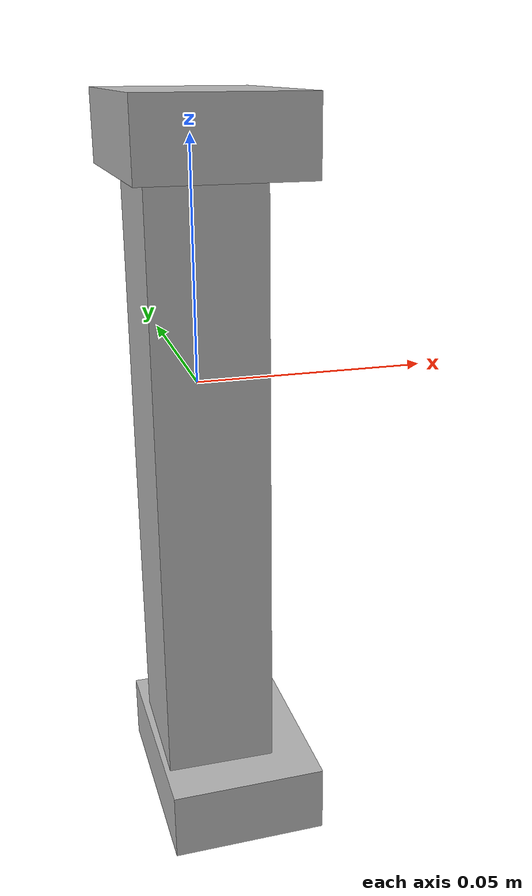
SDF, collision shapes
<?xml version='1.0'?>
<sdf version='1.6'>
  <model name='creeper01'>
    <link name='link'>
      <inertial>
    	 <mass>1.2e-8</mass>
        <inertia>
          <ixx>0.166667</ixx>
          <ixy>0</ixy>
          <ixz>0</ixz>
          <iyy>0.166667</iyy>
          <iyz>0</iyz>
          <izz>0.166667</izz>
        </inertia>
      </inertial>
      <pose frame=''>5e-06 -5e-06 0 0 -0 0</pose>
      <visual name='visual'>
        <pose frame=''>0 0 -0.15 0 -0 0</pose>
        <geometry>
          <mesh>
            <uri>model://creeper_fisica/creeper_fisica/creeper11_azul/materials/textures/teste.dae</uri>
            <scale>1 1 1</scale>
          </mesh>
        </geometry>
        <material>
          <lighting>1</lighting>
        </material>
        <transparency>0</transparency>
        <cast_shadows>1</cast_shadows>
      </visual>
      <collision name='collision'>
        <laser_retro>0</laser_retro>
        <max_contacts>10</max_contacts>
        <pose frame=''>0 0 -0.03 0 -0 0</pose>
        <geometry>
          <box>
            <size>0.023951 0.028999 0.145</size>
          </box>
        </geometry>
        <surface>
          <friction>
            <ode>
              <mu>1</mu>
              <mu2>1</mu2>
              <fdir1>0 0 0</fdir1>
              <slip1>0</slip1>
              <slip2>0</slip2>
            </ode>
            <torsional>
              <coefficient>1</coefficient>
              <patch_radius>0</patch_radius>
              <surface_radius>0</surface_radius>
              <use_patch_radius>1</use_patch_radius>
              <ode>
                <slip>0</slip>
              </ode>
            </torsional>
          </friction>
          <bounce>
            <restitution_coefficient>0</restitution_coefficient>
            <threshold>1e+06</threshold>
          </bounce>
          <contact>
            <collide_without_contact>0</collide_without_contact>
            <collide_without_contact_bitmask>1</collide_without_contact_bitmask>
            <collide_bitmask>1</collide_bitmask>
            <ode>
              <soft_cfm>0</soft_cfm>
              <soft_erp>0.2</soft_erp>
              <kp>1e+13</kp>
              <kd>1</kd>
              <max_vel>0.01</max_vel>
              <min_depth>0</min_depth>
            </ode>
            <bullet>
              <split_impulse>1</split_impulse>
              <split_impulse_penetration_threshold>-0.01</split_impulse_penetration_threshold>
              <soft_cfm>0</soft_cfm>
              <soft_erp>0.2</soft_erp>
              <kp>1e+13</kp>
              <kd>1</kd>
            </bullet>
          </contact>
        </surface>
      </collision>
    </link>
    <link name='link_clone'>
      <inertial>
        <mass>1.2e-8</mass>
        <inertia>
          <ixx>4.1755e-05</ixx>
          <ixy>0</ixy>
          <ixz>0</ixz>
          <iyy>5.61333e-05</iyy>
          <iyz>0</iyz>
          <izz>2.15251e-05</izz>
        </inertia>
        <pose frame=''>0 0 0 0 -0 0</pose>
      </inertial>
      <self_collide>0</self_collide>
      <enable_wind>0</enable_wind>
      <kinematic>0</kinematic>
      <pose frame=''>0.003715 0.000372 -0.094372 -1.58246 0.000242 0.016663</pose>
      <visual name='visual'>
        <geometry>
          <box>
            <size>0.000023951 0.000028999 0.000202698</size>
          </box>
        </geometry>
        <material>
           <shader type='pixel'/>
          <emissive>0 0 0 1</emissive>
        </material>
        <pose frame=''>0 0 0 0 -0 0</pose>
        <transparency>0</transparency>
        <cast_shadows>1</cast_shadows>
      </visual>
      <collision name='collision'>
        <laser_retro>0</laser_retro>
        <max_contacts>10</max_contacts>
        <pose frame=''>0 0 0 0 -0 0</pose>
        <geometry>
          <box>
            <size>0.034175 0.015248 0.049841</size>
          </box>
        </geometry>
        <surface>
          <friction>
            <ode>
              <mu>1</mu>
              <mu2>1</mu2>
              <fdir1>0 0 0</fdir1>
              <slip1>0</slip1>
              <slip2>0</slip2>
            </ode>
            <torsional>
              <coefficient>1</coefficient>
              <patch_radius>0</patch_radius>
              <surface_radius>0</surface_radius>
              <use_patch_radius>1</use_patch_radius>
              <ode>
                <slip>0</slip>
              </ode>
            </torsional>
          </friction>
          <bounce>
            <restitution_coefficient>0</restitution_coefficient>
            <threshold>1e+06</threshold>
          </bounce>
          <contact>
            <collide_without_contact>0</collide_without_contact>
            <collide_without_contact_bitmask>1</collide_without_contact_bitmask>
            <collide_bitmask>1</collide_bitmask>
            <ode>
              <soft_cfm>0</soft_cfm>
              <soft_erp>0.2</soft_erp>
              <kp>1e+13</kp>
              <kd>1</kd>
              <max_vel>0.01</max_vel>
              <min_depth>0</min_depth>
            </ode>
            <bullet>
              <split_impulse>1</split_impulse>
              <split_impulse_penetration_threshold>-0.01</split_impulse_penetration_threshold>
              <soft_cfm>0</soft_cfm>
              <soft_erp>0.2</soft_erp>
              <kp>1e+13</kp>
              <kd>1</kd>
            </bullet>
          </contact>
        </surface>
      </collision>
    </link>
    <link name='link_clone_clone'>
      <inertial>
        <mass>1.2e-8</mass>
        <inertia>
          <ixx>4.1755e-05</ixx>
          <ixy>0</ixy>
          <ixz>0</ixz>
          <iyy>5.61333e-05</iyy>
          <iyz>0</iyz>
          <izz>2.15251e-05</izz>
        </inertia>
        <pose frame=''>0 0 0 0 -0 0</pose>
      </inertial>
      <self_collide>0</self_collide>
      <enable_wind>0</enable_wind>
      <kinematic>0</kinematic>
      <pose frame=''>0.001433 0.000213 0.050453 -1.58246 0.000289 0.016625</pose>

      <visual name='visual'>
        <geometry>
          <box>
            <size>0.000023951 0.000028999 0.000202698</size>
          </box>
        </geometry>
        <material>
           <shader type='pixel'/>
          <emissive>0 0 0 1</emissive>
        </material>
        <pose frame=''>0 0 0 0 -0 0</pose>
        <transparency>0</transparency>
        <cast_shadows>1</cast_shadows>
      </visual>
      <collision name='collision'>
        <laser_retro>0</laser_retro>
        <max_contacts>10</max_contacts>
        <pose frame=''>0 0 0 0 -0 0</pose>
        <geometry>
          <box>
            <size>0.034175 0.015248 0.049841</size>
          </box>
        </geometry>
        <surface>
          <friction>
            <ode>
              <mu>1</mu>
              <mu2>1</mu2>
              <fdir1>0 0 0</fdir1>
              <slip1>0</slip1>
              <slip2>0</slip2>
            </ode>
            <torsional>
              <coefficient>1</coefficient>
              <patch_radius>0</patch_radius>
              <surface_radius>0</surface_radius>
              <use_patch_radius>1</use_patch_radius>
              <ode>
                <slip>0</slip>
              </ode>
            </torsional>
          </friction>
          <bounce>
            <restitution_coefficient>0</restitution_coefficient>
            <threshold>1e+06</threshold>
          </bounce>
          <contact>
            <collide_without_contact>0</collide_without_contact>
            <collide_without_contact_bitmask>1</collide_without_contact_bitmask>
            <collide_bitmask>1</collide_bitmask>
            <ode>
              <soft_cfm>0</soft_cfm>
              <soft_erp>0.2</soft_erp>
              <kp>1e+13</kp>
              <kd>1</kd>
              <max_vel>0.01</max_vel>
              <min_depth>0</min_depth>
            </ode>
            <bullet>
              <split_impulse>1</split_impulse>
              <split_impulse_penetration_threshold>-0.01</split_impulse_penetration_threshold>
              <soft_cfm>0</soft_cfm>
              <soft_erp>0.2</soft_erp>
              <kp>1e+13</kp>
              <kd>1</kd>
            </bullet>
          </contact>
        </surface>
      </collision>
    </link>
    <joint name='link_JOINT_0' type='fixed'>
      <parent>link</parent>
      <child>link_clone_clone</child>
      <pose frame=''>0 0 0 0 -0 0</pose>
      <physics>
        <ode>
          <limit>
            <cfm>0</cfm>
            <erp>0.2</erp>
          </limit>
          <suspension>
            <cfm>0</cfm>
            <erp>0.2</erp>
          </suspension>
        </ode>
      </physics>
    </joint>
    <joint name='link_JOINT_1' type='fixed'>
      <parent>link</parent>
      <child>link_clone</child>
      <pose frame=''>0 0 0 0 -0 0</pose>
      <physics>
        <ode>
          <limit>
            <cfm>0</cfm>
            <erp>0.2</erp>
          </limit>
          <suspension>
            <cfm>0</cfm>
            <erp>0.2</erp>
          </suspension>
        </ode>
      </physics>
    </joint>
    <static>0</static>
    <allow_auto_disable>1</allow_auto_disable>
  </model>
</sdf>
